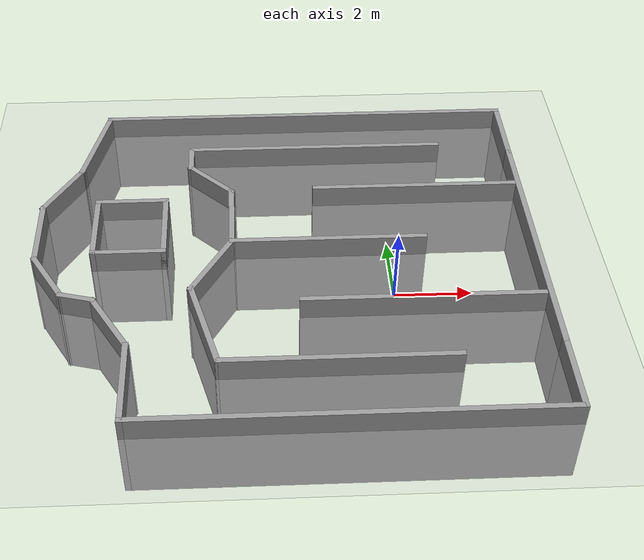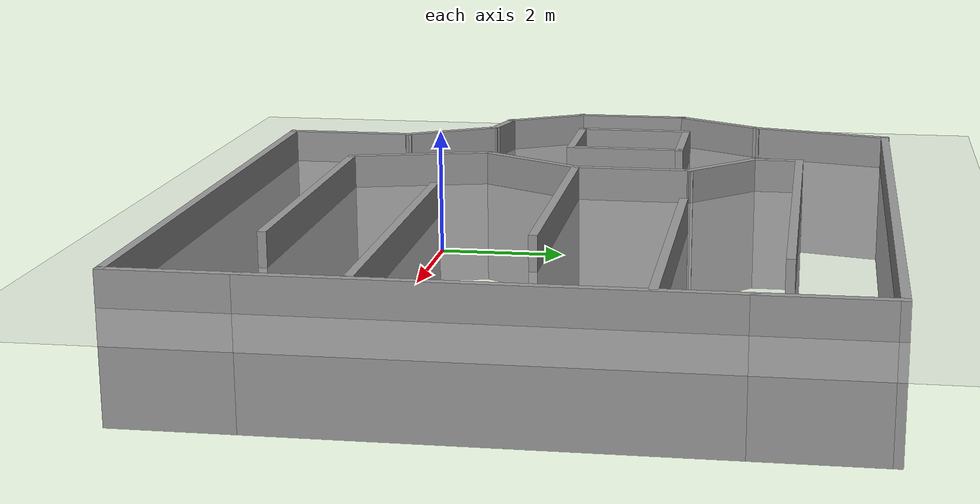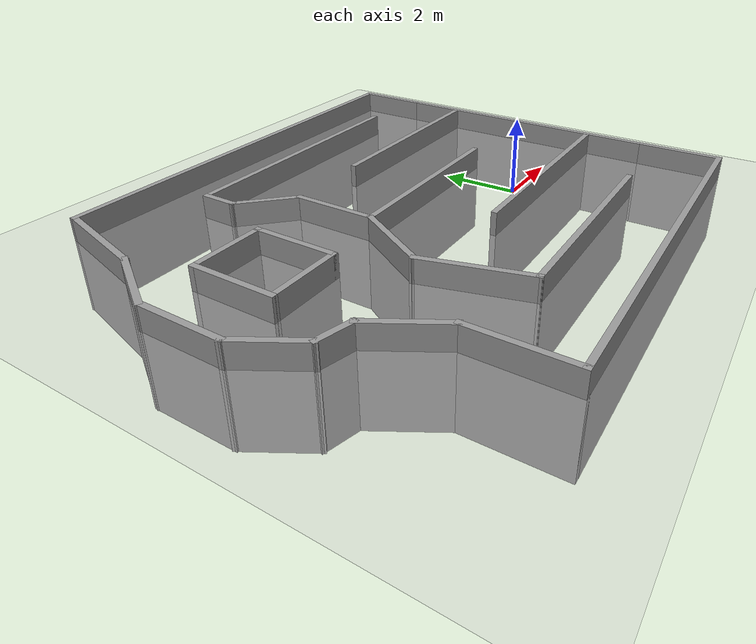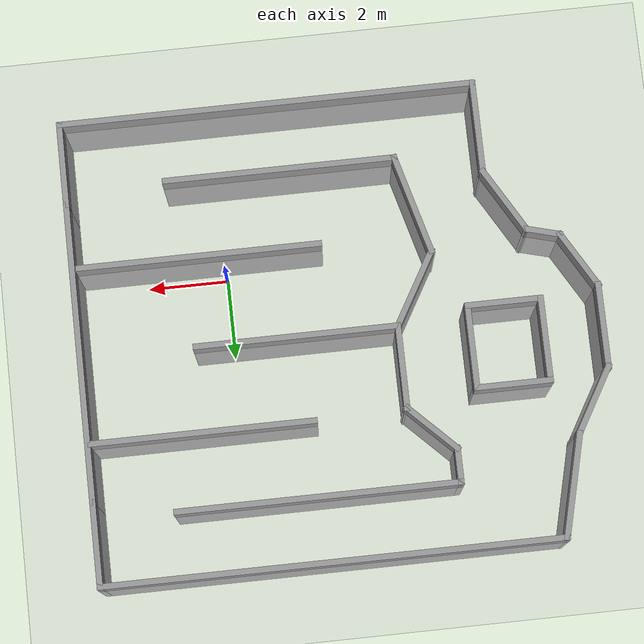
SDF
<sdf version="1.7">
 <world name="default">
  <light name="sun" type="directional">
   <pose>0 0 10 0 -0 0</pose>
   <diffuse>0.8 0.8 0.8 1</diffuse>
   <specular>0.2 0.2 0.2 1</specular>
   <attenuation>
    <range>1000</range>
    <constant>0.9</constant>
    <linear>0.01</linear>
    <quadratic>0.001</quadratic>
   </attenuation>
   <direction>-0.5 0.1 -0.9</direction>
   <spot><inner_angle>0</inner_angle><outer_angle>0</outer_angle><falloff>0</falloff></spot>
  </light>
  <model name="ground_plane">
   <static>1</static>
   <link name="link">
    <collision name="collision">
     <geometry><plane><normal>0 0 1</normal><size>100 100</size></plane></geometry>
     <surface>
      <contact><collide_bitmask>65535</collide_bitmask></contact>
      <friction><ode><mu>100</mu><mu2>50</mu2></ode></friction>
     </surface>
    </collision>
    <visual name="visual">
     <cast_shadows>0</cast_shadows>
     <geometry><plane><normal>0 0 1</normal><size>100 100</size></plane></geometry>
     <material>
      <script><uri>file://media/materials/scripts/gazebo.material</uri><name>Gazebo/Grey</name></script>
     </material>
    </visual>
   </link>
  </model>
  <gravity>0 0 -9.8</gravity>
  <magnetic_field>6e-06 2.3e-05 -4.2e-05</magnetic_field>
  <atmosphere type="adiabatic"/>
  <physics type="ode">
   <max_step_size>0.001</max_step_size>
   <real_time_factor>1</real_time_factor>
   <real_time_update_rate>1000</real_time_update_rate>
  </physics>
  <scene><ambient>0.4 0.4 0.4 1</ambient><background>0.7 0.7 0.7 1</background><shadows>1</shadows></scene>
  <spherical_coordinates>
   <surface_model>EARTH_WGS84</surface_model>
   <latitude_deg>0</latitude_deg>
   <longitude_deg>0</longitude_deg>
   <elevation>0</elevation>
   <heading_deg>0</heading_deg>
  </spherical_coordinates>
  <model name="second_track">
   <pose>-2.71495 1.50861 -1.91689 0 -0 0</pose>
   <link name="Wall_0">
    <collision name="Wall_0_Collision">
     <geometry><box><size>2.25 0.15 2.5</size></box></geometry>
     <pose>0 0 1.25 0 -0 0</pose>
    </collision>
    <visual name="Wall_0_Visual">
     <pose>0 0 1.25 0 -0 0</pose>
     <geometry><box><size>2.25 0.15 2.5</size></box></geometry>
     <material>
      <script><uri>file://media/materials/scripts/gazebo.material</uri><name>Gazebo/Grey</name></script>
      <ambient>1 1 1 1</ambient>
     </material>
     <meta><layer>0</layer></meta>
    </visual>
    <pose>-5.07569 0.892287 0 0 -0 -1.5708</pose>
   </link>
   <link name="Wall_1">
    <collision name="Wall_1_Collision">
     <geometry><box><size>2 0.15 2.5</size></box></geometry>
     <pose>0 0 1.25 0 -0 0</pose>
    </collision>
    <visual name="Wall_1_Visual">
     <pose>0 0 1.25 0 -0 0</pose>
     <geometry><box><size>2 0.15 2.5</size></box></geometry>
     <material>
      <script><uri>file://media/materials/scripts/gazebo.material</uri><name>Gazebo/Grey</name></script>
      <ambient>1 1 1 1</ambient>
     </material>
     <meta><layer>0</layer></meta>
    </visual>
    <pose>-4.15069 -0.157713 0 0 -0 0</pose>
   </link>
   <link name="Wall_10">
    <collision name="Wall_10_Collision">
     <geometry><box><size>2.5 0.15 2.5</size></box></geometry>
     <pose>0 0 1.25 0 -0 0</pose>
    </collision>
    <visual name="Wall_10_Visual">
     <pose>0 0 1.25 0 -0 0</pose>
     <geometry><box><size>2.5 0.15 2.5</size></box></geometry>
     <material>
      <script><uri>file://media/materials/scripts/gazebo.material</uri><name>Gazebo/Grey</name></script>
      <ambient>1 1 1 1</ambient>
     </material>
     <meta><layer>0</layer></meta>
    </visual>
    <pose>-4.01326 -4.73283 0 0 -0 -1.5708</pose>
   </link>
   <link name="Wall_11">
    <collision name="Wall_11_Collision">
     <geometry><box><size>10.75 0.15 2.5</size></box></geometry>
     <pose>0 0 1.25 0 -0 0</pose>
    </collision>
    <visual name="Wall_11_Visual">
     <pose>0 0 1.25 0 -0 0</pose>
     <geometry><box><size>10.75 0.15 2.5</size></box></geometry>
     <material>
      <script><uri>file://media/materials/scripts/gazebo.material</uri><name>Gazebo/Grey</name></script>
      <ambient>1 1 1 1</ambient>
     </material>
     <meta><layer>0</layer></meta>
    </visual>
    <pose>1.28674 -5.90783 0 0 -0 0</pose>
   </link>
   <link name="Wall_12">
    <collision name="Wall_12_Collision">
     <geometry><box><size>2.25 0.15 2.5</size></box></geometry>
     <pose>0 0 1.25 0 -0 0</pose>
    </collision>
    <visual name="Wall_12_Visual">
     <pose>0 0 1.25 0 -0 0</pose>
     <geometry><box><size>2.25 0.15 2.5</size></box></geometry>
     <material>
      <script><uri>file://media/materials/scripts/gazebo.material</uri><name>Gazebo/Grey</name></script>
      <ambient>1 1 1 1</ambient>
     </material>
     <meta><layer>0</layer></meta>
    </visual>
    <pose>6.58674 -4.85783 0 0 -0 1.5708</pose>
   </link>
   <link name="Wall_13">
    <collision name="Wall_13_Collision">
     <geometry><box><size>7.75 0.15 2.5</size></box></geometry>
     <pose>0 0 1.25 0 -0 0</pose>
    </collision>
    <visual name="Wall_13_Visual">
     <pose>0 0 1.25 0 -0 0</pose>
     <geometry><box><size>7.75 0.15 2.5</size></box></geometry>
     <material>
      <script><uri>file://media/materials/scripts/gazebo.material</uri><name>Gazebo/Grey</name></script>
      <ambient>1 1 1 1</ambient>
     </material>
     <meta><layer>0</layer></meta>
    </visual>
    <pose>6.58674 -0.007833 0 0 -0 1.5708</pose>
   </link>
   <link name="Wall_14">
    <collision name="Wall_14_Collision">
     <geometry><box><size>2.25 0.15 2.5</size></box></geometry>
     <pose>0 0 1.25 0 -0 0</pose>
    </collision>
    <visual name="Wall_14_Visual">
     <pose>0 0 1.25 0 -0 0</pose>
     <geometry><box><size>2.25 0.15 2.5</size></box></geometry>
     <material>
      <script><uri>file://media/materials/scripts/gazebo.material</uri><name>Gazebo/Grey</name></script>
      <ambient>1 1 1 1</ambient>
     </material>
     <meta><layer>0</layer></meta>
    </visual>
    <pose>6.58674 4.84217 0 0 -0 1.5708</pose>
   </link>
   <link name="Wall_15">
    <collision name="Wall_15_Collision">
     <geometry><box><size>11.75 0.15 2.5</size></box></geometry>
     <pose>0 0 1.25 0 -0 0</pose>
    </collision>
    <visual name="Wall_15_Visual">
     <pose>0 0 1.25 0 -0 0</pose>
     <geometry><box><size>11.75 0.15 2.5</size></box></geometry>
     <material>
      <script><uri>file://media/materials/scripts/gazebo.material</uri><name>Gazebo/Grey</name></script>
      <ambient>1 1 1 1</ambient>
     </material>
     <meta><layer>0</layer></meta>
    </visual>
    <pose>0.786744 5.89217 0 0 -0 3.14159</pose>
   </link>
   <link name="Wall_16">
    <collision name="Wall_16_Collision">
     <geometry><box><size>2.76489 0.15 2.5</size></box></geometry>
     <pose>0 0 1.25 0 -0 0</pose>
    </collision>
    <visual name="Wall_16_Visual">
     <pose>0 0 1.25 0 -0 0</pose>
     <geometry><box><size>2.76489 0.15 2.5</size></box></geometry>
     <material>
      <script><uri>file://media/materials/scripts/gazebo.material</uri><name>Gazebo/Grey</name></script>
      <ambient>1 1 1 1</ambient>
     </material>
     <meta><layer>0</layer></meta>
    </visual>
    <pose>-5.32377 4.62213 0 0 -0 -1.81059</pose>
   </link>
   <link name="Wall_18">
    <collision name="Wall_18_Collision">
     <geometry><box><size>1.75 0.15 2.5</size></box></geometry>
     <pose>0 0 1.25 0 -0 0</pose>
    </collision>
    <visual name="Wall_18_Visual">
     <pose>0 0 1.25 0 -0 0</pose>
     <geometry><box><size>1.75 0.15 2.5</size></box></geometry>
     <material>
      <script><uri>file://media/materials/scripts/gazebo.material</uri><name>Gazebo/Grey</name></script>
      <ambient>1 1 1 1</ambient>
     </material>
     <meta><layer>0</layer></meta>
    </visual>
    <pose>-1.99572 2.83205 0 0 -0 -0.785398</pose>
   </link>
   <link name="Wall_19">
    <collision name="Wall_19_Collision">
     <geometry><box><size>2.25 0.15 2.5</size></box></geometry>
     <pose>0 0 1.25 0 -0 0</pose>
    </collision>
    <visual name="Wall_19_Visual">
     <pose>0 0 1.25 0 -0 0</pose>
     <geometry><box><size>2.25 0.15 2.5</size></box></geometry>
     <material>
      <script><uri>file://media/materials/scripts/gazebo.material</uri><name>Gazebo/Grey</name></script>
      <ambient>1 1 1 1</ambient>
     </material>
     <meta><layer>0</layer></meta>
    </visual>
    <pose>-1.43004 1.21636 0 0 -0 -1.5708</pose>
   </link>
   <link name="Wall_2">
    <collision name="Wall_2_Collision">
     <geometry><box><size>2.25 0.15 2.5</size></box></geometry>
     <pose>0 0 1.25 0 -0 0</pose>
    </collision>
    <visual name="Wall_2_Visual">
     <pose>0 0 1.25 0 -0 0</pose>
     <geometry><box><size>2.25 0.15 2.5</size></box></geometry>
     <material>
      <script><uri>file://media/materials/scripts/gazebo.material</uri><name>Gazebo/Grey</name></script>
      <ambient>1 1 1 1</ambient>
     </material>
     <meta><layer>0</layer></meta>
    </visual>
    <pose>-3.22569 0.892287 0 0 -0 1.5708</pose>
   </link>
   <link name="Wall_20">
    <collision name="Wall_20_Collision">
     <geometry><box><size>2.25 0.15 2.5</size></box></geometry>
     <pose>0 0 1.25 0 -0 0</pose>
    </collision>
    <visual name="Wall_20_Visual">
     <pose>0 0 1.25 0 -0 0</pose>
     <geometry><box><size>2.25 0.15 2.5</size></box></geometry>
     <material>
      <script><uri>file://media/materials/scripts/gazebo.material</uri><name>Gazebo/Grey</name></script>
      <ambient>1 1 1 1</ambient>
     </material>
     <meta><layer>0</layer></meta>
    </visual>
    <pose>-1.95504 -0.742963 0 0 -0 -2.0944</pose>
   </link>
   <link name="Wall_21">
    <collision name="Wall_21_Collision">
     <geometry><box><size>2.75 0.15 2.5</size></box></geometry>
     <pose>0 0 1.25 0 -0 0</pose>
    </collision>
    <visual name="Wall_21_Visual">
     <pose>0 0 1.25 0 -0 0</pose>
     <geometry><box><size>2.75 0.15 2.5</size></box></geometry>
     <material>
      <script><uri>file://media/materials/scripts/gazebo.material</uri><name>Gazebo/Grey</name></script>
      <ambient>1 1 1 1</ambient>
     </material>
     <meta><layer>0</layer></meta>
    </visual>
    <pose>-2.14357 -2.90799 0 0 -0 -1.309</pose>
   </link>
   <link name="Wall_22">
    <collision name="Wall_22_Collision">
     <geometry><box><size>6 0.15 2.5</size></box></geometry>
     <pose>0 0 1.25 0 -0 0</pose>
    </collision>
    <visual name="Wall_22_Visual">
     <pose>0 0 1.25 0 -0 0</pose>
     <geometry><box><size>6 0.15 2.5</size></box></geometry>
     <material>
      <script><uri>file://media/materials/scripts/gazebo.material</uri><name>Gazebo/Grey</name></script>
      <ambient>1 1 1 1</ambient>
     </material>
     <meta><layer>0</layer></meta>
    </visual>
    <pose>1.11789 -4.1637 0 0 -0 0</pose>
   </link>
   <link name="Wall_24">
    <collision name="Wall_24_Collision">
     <geometry><box><size>6.25 0.15 2.5</size></box></geometry>
     <pose>0 0 1.25 0 -0 0</pose>
    </collision>
    <visual name="Wall_24_Visual">
     <pose>0 0 1.25 0 -0 0</pose>
     <geometry><box><size>6.25 0.15 2.5</size></box></geometry>
     <material>
      <script><uri>file://media/materials/scripts/gazebo.material</uri><name>Gazebo/Grey</name></script>
      <ambient>1 1 1 1</ambient>
     </material>
     <meta><layer>0</layer></meta>
    </visual>
    <pose>3.37307 -2.13861 0 0 -0 0</pose>
   </link>
   <link name="Wall_26">
    <collision name="Wall_26_Collision">
     <geometry><box><size>5.25 0.15 2.5</size></box></geometry>
     <pose>0 0 1.25 0 -0 0</pose>
    </collision>
    <visual name="Wall_26_Visual">
     <pose>0 0 1.25 0 -0 0</pose>
     <geometry><box><size>5.25 0.15 2.5</size></box></geometry>
     <material>
      <script><uri>file://media/materials/scripts/gazebo.material</uri><name>Gazebo/Grey</name></script>
      <ambient>1 1 1 1</ambient>
     </material>
     <meta><layer>0</layer></meta>
    </visual>
    <pose>1.11996 0.166364 0 0 -0 0</pose>
   </link>
   <link name="Wall_3">
    <collision name="Wall_3_Collision">
     <geometry><box><size>2 0.15 2.5</size></box></geometry>
     <pose>0 0 1.25 0 -0 0</pose>
    </collision>
    <visual name="Wall_3_Visual">
     <pose>0 0 1.25 0 -0 0</pose>
     <geometry><box><size>2 0.15 2.5</size></box></geometry>
     <material>
      <script><uri>file://media/materials/scripts/gazebo.material</uri><name>Gazebo/Grey</name></script>
      <ambient>1 1 1 1</ambient>
     </material>
     <meta><layer>0</layer></meta>
    </visual>
    <pose>-4.15069 1.94229 0 0 -0 3.14159</pose>
   </link>
   <link name="Wall_30">
    <collision name="Wall_30_Collision">
     <geometry><box><size>5.75 0.15 2.5</size></box></geometry>
     <pose>0 0 1.25 0 -0 0</pose>
    </collision>
    <visual name="Wall_30_Visual">
     <pose>0 0 1.25 0 -0 0</pose>
     <geometry><box><size>5.75 0.15 2.5</size></box></geometry>
     <material>
      <script><uri>file://media/materials/scripts/gazebo.material</uri><name>Gazebo/Grey</name></script>
      <ambient>1 1 1 1</ambient>
     </material>
     <meta><layer>0</layer></meta>
    </visual>
    <pose>3.70304 2.33817 0 0 -0 0</pose>
   </link>
   <link name="Wall_32">
    <collision name="Wall_32_Collision">
     <geometry><box><size>1 0.15 2.5</size></box></geometry>
     <pose>0 0 1.25 0 -0 0</pose>
    </collision>
    <visual name="Wall_32_Visual">
     <pose>0 0 1.25 0 -0 0</pose>
     <geometry><box><size>1 0.15 2.5</size></box></geometry>
     <material>
      <script><uri>file://media/materials/scripts/gazebo.material</uri><name>Gazebo/Grey</name></script>
      <ambient>1 1 1 1</ambient>
     </material>
     <meta><layer>0</layer></meta>
    </visual>
    <pose>-2.56141 3.82273 0 0 -0 1.5708</pose>
   </link>
   <link name="Wall_33">
    <collision name="Wall_33_Collision">
     <geometry><box><size>7.25 0.15 2.5</size></box></geometry>
     <pose>0 0 1.25 0 -0 0</pose>
    </collision>
    <visual name="Wall_33_Visual">
     <pose>0 0 1.25 0 -0 0</pose>
     <geometry><box><size>7.25 0.15 2.5</size></box></geometry>
     <material>
      <script><uri>file://media/materials/scripts/gazebo.material</uri><name>Gazebo/Grey</name></script>
      <ambient>1 1 1 1</ambient>
     </material>
     <meta><layer>0</layer></meta>
    </visual>
    <pose>0.988589 4.24773 0 0 -0 0</pose>
   </link>
   <link name="Wall_5">
    <collision name="Wall_5_Collision">
     <geometry><box><size>2 0.15 2.5</size></box></geometry>
     <pose>0 0 1.25 0 -0 0</pose>
    </collision>
    <visual name="Wall_5_Visual">
     <pose>0 0 1.25 0 -0 0</pose>
     <geometry><box><size>2 0.15 2.5</size></box></geometry>
     <material>
      <script><uri>file://media/materials/scripts/gazebo.material</uri><name>Gazebo/Grey</name></script>
      <ambient>1 1 1 1</ambient>
     </material>
     <meta><layer>0</layer></meta>
    </visual>
    <pose>-6.09679 2.55102 0 0 -0 -2.0944</pose>
   </link>
   <link name="Wall_6">
    <collision name="Wall_6_Collision">
     <geometry><box><size>2.25 0.15 2.5</size></box></geometry>
     <pose>0 0 1.25 0 -0 0</pose>
    </collision>
    <visual name="Wall_6_Visual">
     <pose>0 0 1.25 0 -0 0</pose>
     <geometry><box><size>2.25 0.15 2.5</size></box></geometry>
     <material>
      <script><uri>file://media/materials/scripts/gazebo.material</uri><name>Gazebo/Grey</name></script>
      <ambient>1 1 1 1</ambient>
     </material>
     <meta><layer>0</layer></meta>
    </visual>
    <pose>-6.55929 0.69995 0 0 -0 -1.5708</pose>
   </link>
   <link name="Wall_7">
    <collision name="Wall_7_Collision">
     <geometry><box><size>1.75 0.15 2.5</size></box></geometry>
     <pose>0 0 1.25 0 -0 0</pose>
    </collision>
    <visual name="Wall_7_Visual">
     <pose>0 0 1.25 0 -0 0</pose>
     <geometry><box><size>1.75 0.15 2.5</size></box></geometry>
     <material>
      <script><uri>file://media/materials/scripts/gazebo.material</uri><name>Gazebo/Grey</name></script>
      <ambient>1 1 1 1</ambient>
     </material>
     <meta><layer>0</layer></meta>
    </visual>
    <pose>-6.15929 -1.04287 0 0 -0 -1.0472</pose>
   </link>
   <link name="Wall_8">
    <collision name="Wall_8_Collision">
     <geometry><box><size>1 0.15 2.5</size></box></geometry>
     <pose>0 0 1.25 0 -0 0</pose>
    </collision>
    <visual name="Wall_8_Visual">
     <pose>0 0 1.25 0 -0 0</pose>
     <geometry><box><size>1 0.15 2.5</size></box></geometry>
     <material>
      <script><uri>file://media/materials/scripts/gazebo.material</uri><name>Gazebo/Grey</name></script>
      <ambient>1 1 1 1</ambient>
     </material>
     <meta><layer>0</layer></meta>
    </visual>
    <pose>-5.34877 -1.84569 0 0 -0 -0.261799</pose>
   </link>
   <link name="Wall_9">
    <collision name="Wall_9_Collision">
     <geometry><box><size>2 0.15 2.5</size></box></geometry>
     <pose>0 0 1.25 0 -0 0</pose>
    </collision>
    <visual name="Wall_9_Visual">
     <pose>0 0 1.25 0 -0 0</pose>
     <geometry><box><size>2 0.15 2.5</size></box></geometry>
     <material>
      <script><uri>file://media/materials/scripts/gazebo.material</uri><name>Gazebo/Grey</name></script>
      <ambient>1 1 1 1</ambient>
     </material>
     <meta><layer>0</layer></meta>
    </visual>
    <pose>-4.47576 -2.75676 0 0 -0 -1.0472</pose>
   </link>
   <static>1</static>
  </model>
 </world>
</sdf>
